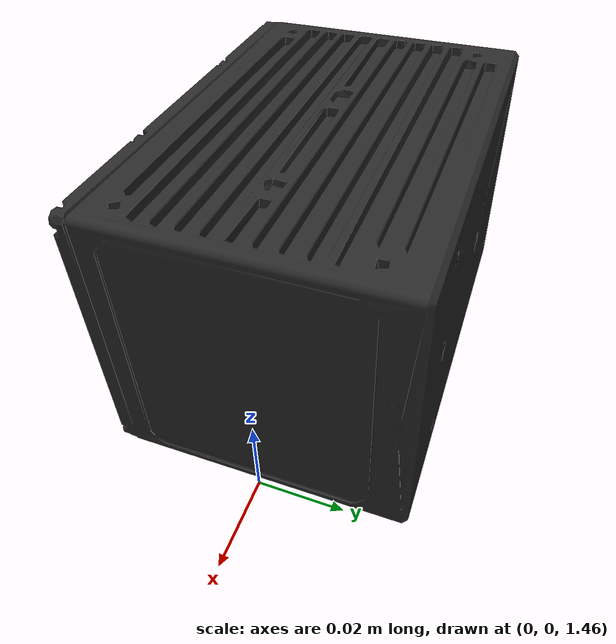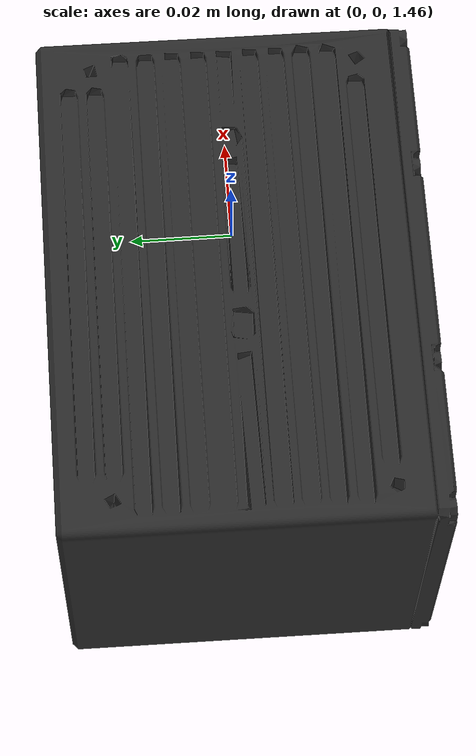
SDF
<?xml version="1.0" encoding="UTF-8"?>
<sdf version="1.9">
  <world name="livox_avia_test">
    <plugin name="gz::sim::systems::Physics" filename="gz-sim-physics-system"/>
    <plugin name="gz::sim::systems::UserCommands" filename="gz-sim-user-commands-system"/>
    <plugin name="gz::sim::systems::SceneBroadcaster" filename="gz-sim-scene-broadcaster-system"/>
    <plugin name="gz::sim::systems::Sensors" filename="gz-sim-sensors-system">
      <render_engine>ogre2</render_engine>
    </plugin>
    <physics type="dart">
      <max_step_size>0.004</max_step_size>
      <real_time_factor>1.0</real_time_factor>
      <real_time_update_rate>250</real_time_update_rate>
    </physics>
    <gravity>0 0 -9.8</gravity>
    <scene>
      <grid>true</grid>
      <ambient>0.5 0.5 0.5 1</ambient>
      <background>0.7 0.7 0.7 1</background>
      <shadows>false</shadows>
    </scene>
    <light name="sun" type="directional">
      <pose>0 0 10 0 0 0</pose>
      <cast_shadows>false</cast_shadows>
      <direction>-0.5 0.2 -0.84</direction>
      <diffuse>0.9 0.9 0.9 1</diffuse>
      <specular>0.1 0.1 0.1 1</specular>
    </light>

    <!-- Apart from the unavoidable ground, this world contains only Avia. -->
    <model name="ground_plane">
      <static>true</static>
      <link name="link">
        <collision name="collision">
          <geometry><plane><normal>0 0 1</normal><size>100 100</size></plane></geometry>
        </collision>
        <visual name="visual">
          <cast_shadows>false</cast_shadows>
          <geometry><plane><normal>0 0 1</normal><size>100 100</size></plane></geometry>
          <material><ambient>0.65 0.65 0.65 1</ambient><diffuse>0.65 0.65 0.65 1</diffuse></material>
        </visual>
      </link>
    </model>
    <include>
      <uri>model://livox_avia</uri>
      <name>livox_avia</name>
      <pose>0 0 1.5 0 0 0</pose>
      <static>true</static>
    </include>
  </world>
</sdf>

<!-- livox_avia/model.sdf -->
<sdf version="1.9">
  <model name="livox_avia">
    <self_collide>false</self_collide>
    <static>false</static>

    <link name="livox_avia_link">
      <gravity>true</gravity>
      <inertial>
        <pose>-0.041135035 0.000000276 -0.000000340 0.072773679 -1.395368869 -0.073903923</pose>
        <mass>0.498</mass>
        <inertia>
          <ixx>0.000486</ixx><iyy>0.000690</iyy><izz>0.000503</izz>
          <ixy>0</ixy><ixz>0</ixz><iyz>0</iyz>
        </inertia>
      </inertial>
      <collision name="housing_collision">
        <pose>-0.041135035 0.000000276 -0.000000340 0.072773679 -1.395368869 -0.073903923</pose>
        <geometry><box><size>0.0883 0.0649 0.0998</size></box></geometry>
      </collision>
      <visual name="housing_visual">
        <pose>-0.041135035 0.000000276 -0.000000340 0.072773679 -1.395368869 -0.073903923</pose>
        <cast_shadows>true</cast_shadows>
        <geometry><mesh><uri>model://livox_avia/meshes/livox_avia.stl</uri></mesh></geometry>
        <material>
          <ambient>0.10 0.10 0.10 1</ambient>
          <diffuse>0.16 0.16 0.16 1</diffuse>
          <specular>0.25 0.25 0.25 1</specular>
        </material>
      </visual>

      <sensor name="nonrepetitive" type="gpu_lidar">
        <topic>/livox_avia/nonrepetitive/scan</topic>
        <always_on>false</always_on>
        <update_rate>10</update_rate>
        <visualize>true</visualize>
        <ray>
          <scan>
            <horizontal>
              <samples>352</samples><resolution>1</resolution>
              <min_angle>-0.614355897</min_angle><max_angle>0.614355897</max_angle>
            </horizontal>
            <vertical>
              <samples>386</samples><resolution>1</resolution>
              <min_angle>-0.673697091</min_angle><max_angle>0.673697091</max_angle>
            </vertical>
          </scan>
          <!-- 190 m is the guaranteed daylight range at 10% reflectivity.
               Livox specifies a blind zone below 1 m and <2 cm (1 sigma)
               random range error at 20 m. -->
          <range><min>1.0</min><max>190.0</max><resolution>0.002</resolution></range>
          <noise><type>gaussian</type><mean>0</mean><stddev>0.02</stddev></noise>
        </ray>
      </sensor>

      <!-- Repetitive line mode: 70.4 x 4.5 degrees, 24k samples per 10 Hz
           cloud = the real strongest/single-return rate of 240k points/s. -->
      <sensor name="repetitive" type="gpu_lidar">
        <topic>/livox_avia/repetitive/scan</topic>
        <always_on>false</always_on>
        <update_rate>10</update_rate>
        <visualize>true</visualize>
        <ray>
          <scan>
            <horizontal>
              <samples>600</samples><resolution>1</resolution>
              <min_angle>-0.614355897</min_angle><max_angle>0.614355897</max_angle>
            </horizontal>
            <vertical>
              <samples>40</samples><resolution>1</resolution>
              <min_angle>-0.039269908</min_angle><max_angle>0.039269908</max_angle>
            </vertical>
          </scan>
          <range><min>1.0</min><max>190.0</max><resolution>0.002</resolution></range>
          <noise><type>gaussian</type><mean>0</mean><stddev>0.02</stddev></noise>
        </ray>
      </sensor>

      <!-- BMI088 IMU. Its origin is 41.65 mm behind, 23.26 mm right and
           28.40 mm above the point-cloud origin per the Avia manual. -->
      <sensor name="imu" type="imu">
        <pose>-0.04165 -0.02326 0.02840 0 0 0</pose>
        <topic>/livox_avia/imu</topic>
        <always_on>false</always_on>
        <update_rate>200</update_rate>
      </sensor>
    </link>
  </model>
</sdf>
